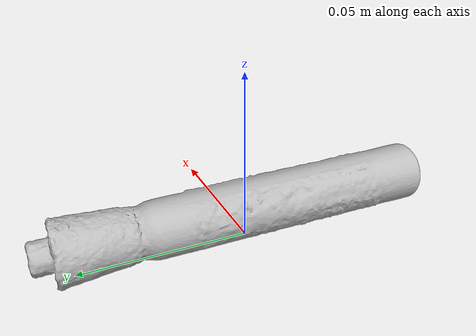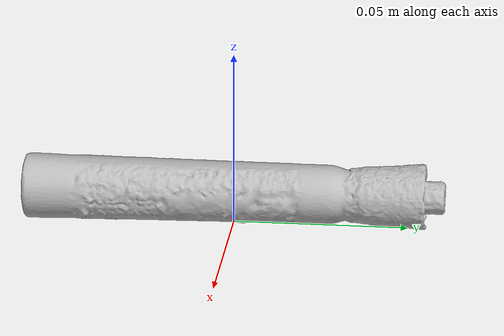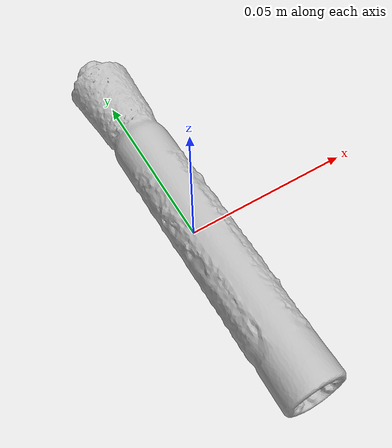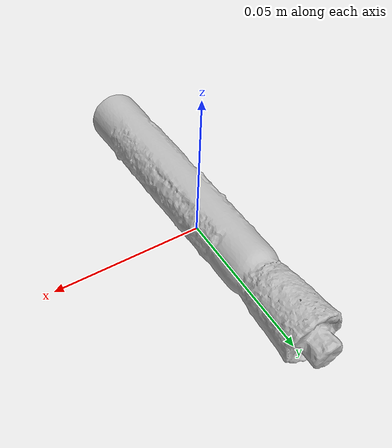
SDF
<?xml version="1.0" ?>
<sdf version='1.8'>
  <model name='ycb_040_large_marker'>
    <link name='body'>
      <inertial>
        <mass>0.0158</mass>
        <pose>-0.000116124729 -0.00280577075 0.00912929689 0 0 0</pose>
        <inertia>
          <ixx>1.78585189017e-05</ixx>
          <ixy>3.58846559519e-07</ixy>
          <ixz>-9.83671543863e-10</ixz>
          <iyy>6.20531152411e-07</iyy>
          <iyz>-9.22527678353e-09</iyz>
          <izz>1.78666659836e-05</izz>
        </inertia>
      </inertial>
      <visual name='ycb_040_large_marker_visual'>
        <pose>0.035609 0.005075 0.000111 0 0 0</pose>
        <geometry>
          <mesh>
            <uri>model://ycb_040_large_marker/meshes/textured.dae</uri>
          </mesh>
        </geometry>
      </visual>
      <collision name='ycb_040_large_marker_collision'>
        <pose>0.035609 0.005075 0.000111 0 0 0</pose>
        <geometry>
          <mesh>
            <uri>model://ycb_040_large_marker/meshes/nontextured.stl</uri>
          </mesh>
        </geometry>
        <max_contacts>10</max_contacts>
        <surface>
          <contact>
            <ode>
              <kp>1e15</kp>
              <kd>1e13</kd>
            </ode>
          </contact>
        </surface>
      </collision>
    </link>
  </model>
</sdf>
